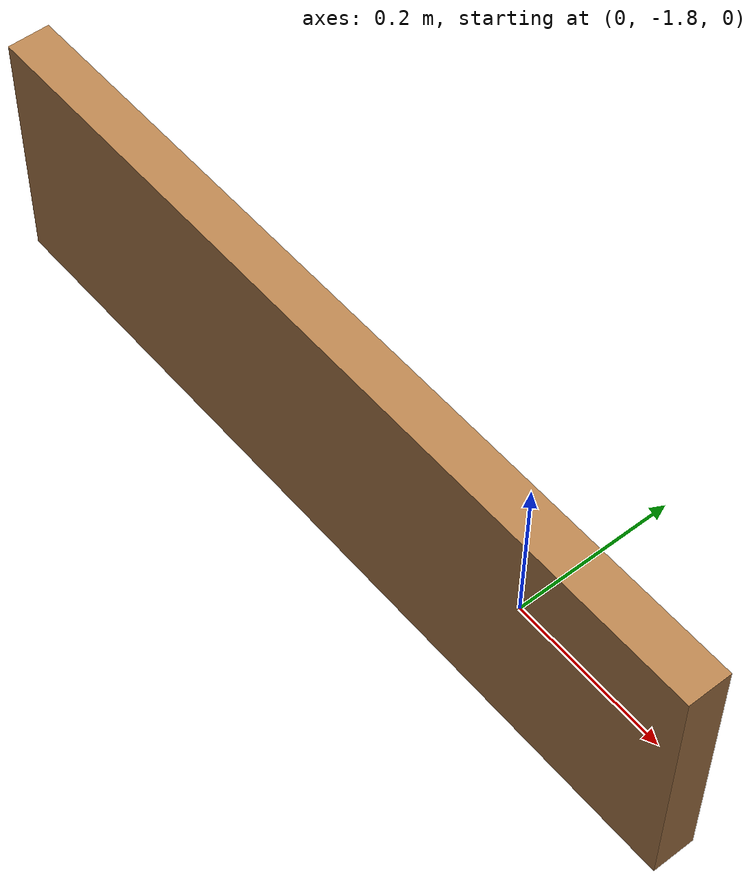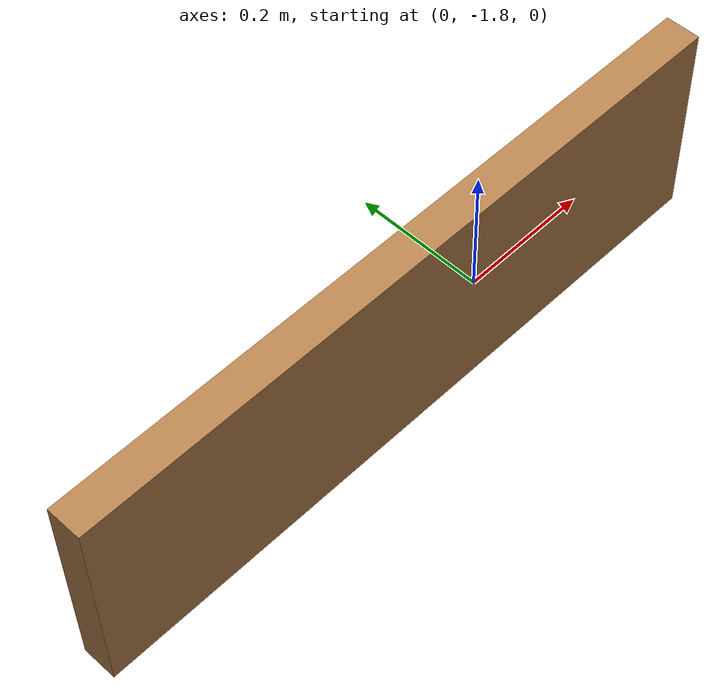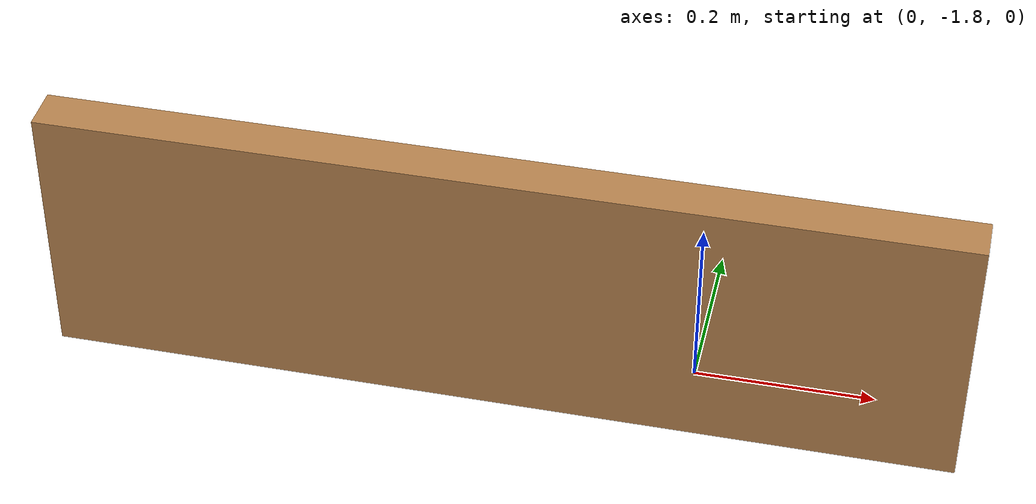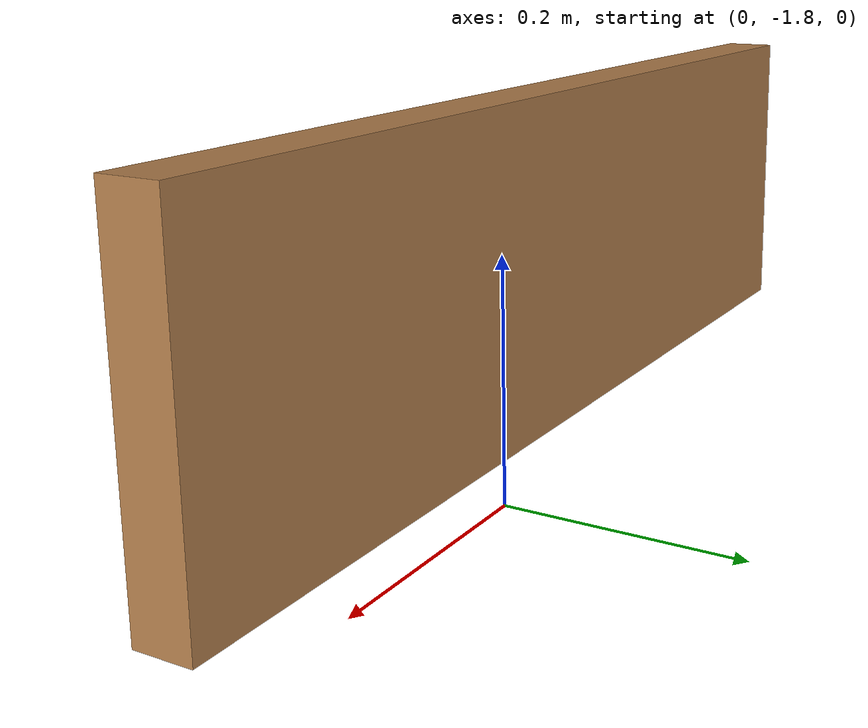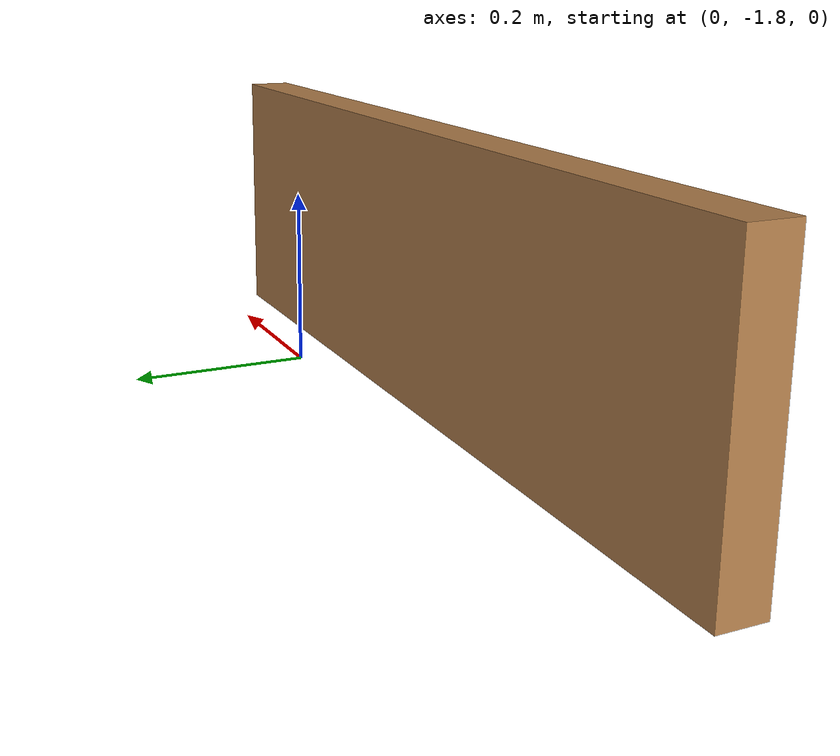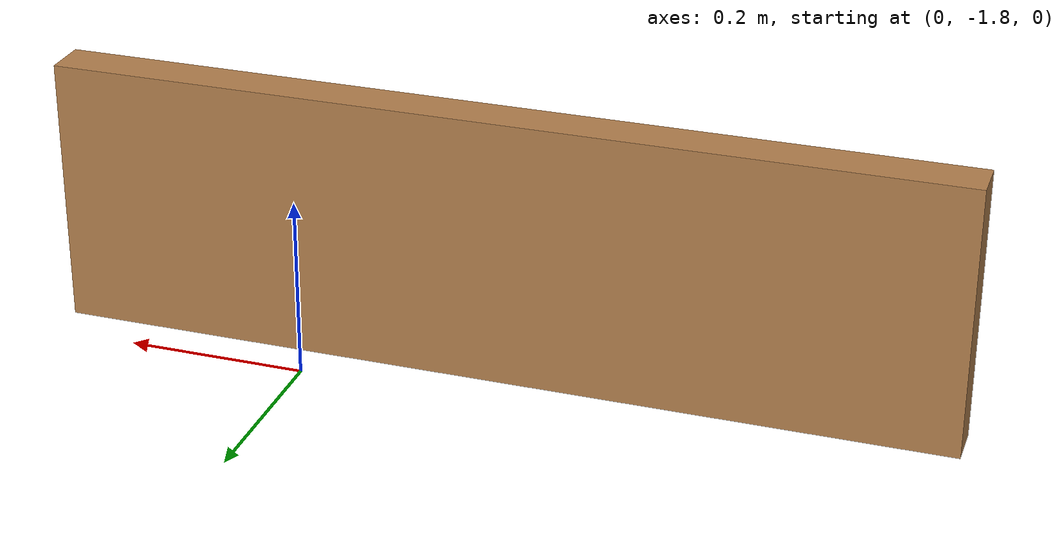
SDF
<?xml version='1.0'?>
<sdf version='1.6'>
  <model name='wall1m'>
    <pose frame=''>-0.205 -1.87 0 0 -0 0</pose>
    <link name='Wall_5'>
      <collision name='Wall_5_Collision'>
        <geometry>
          <box>
            <size>1 0.05 0.3</size>
          </box>
        </geometry>
        <pose frame=''>0 0 0.15 0 -0 0</pose>
      </collision>
      <visual name='Wall_5_Visual'>
        <pose frame=''>0 0 0.15 0 -0 0</pose>
        <geometry>
          <box>
            <size>1 0.05 0.3</size>
          </box>
        </geometry>
        <material>
          <script>
            <uri>file://media/materials/scripts/gazebo.material</uri>
            <name>Gazebo/Wood</name>
          </script>
          <ambient>1 1 1 1</ambient>
        </material>
        <meta>
          <layer>0</layer>
        </meta>
      </visual>
      <pose frame=''>-0 0 0 0 -0 3.14159</pose>
    </link>
    <static>1</static>
  </model>
</sdf>
